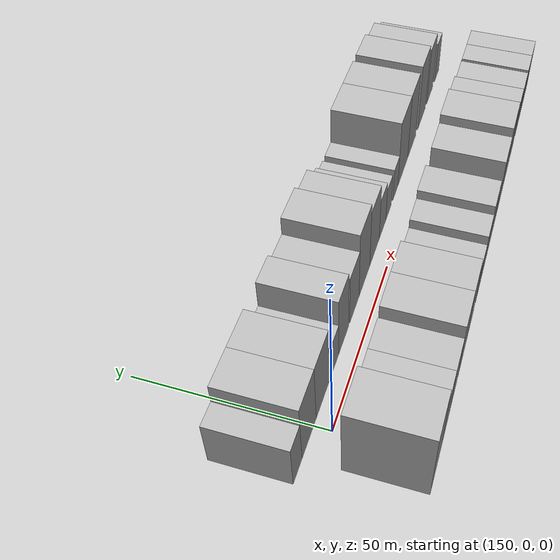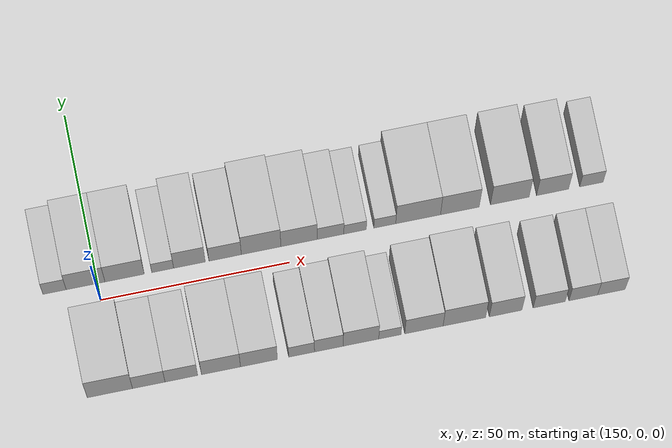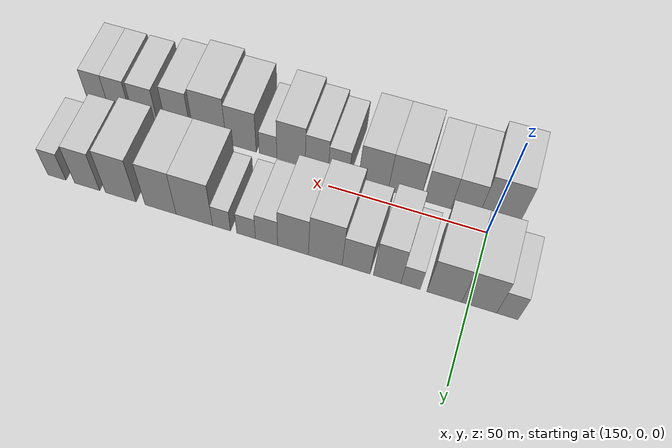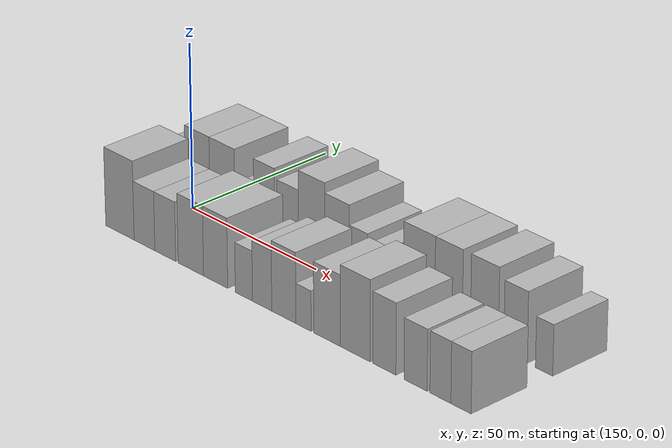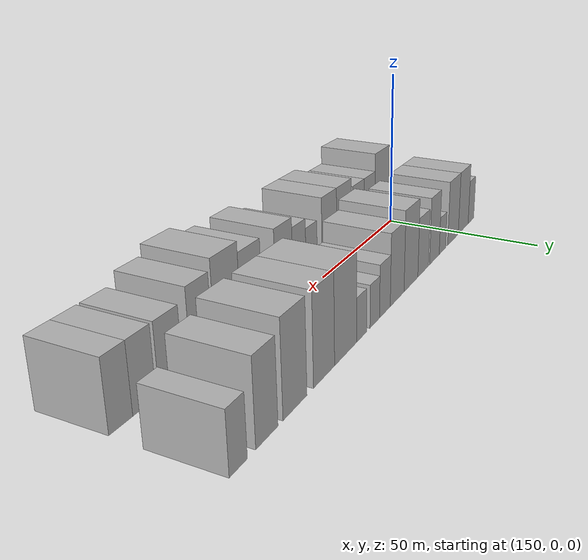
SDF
<sdf version="1.6">
 <world name="default">
  <model name="building_15">
   <static>1</static>
   <pose>138.5844 14.5000 0 0.000000 0.000000 1.570796</pose>
   <link name="link">
    <pose>0 0 7.50 0 0 0</pose>
    <collision name="collision"><geometry><box><size>20.0000 6.1723 15.0000</size></box></geometry></collision>
    <visual name="visual">
     <cast_shadows>0</cast_shadows>
     <geometry><box><size>20.0000 6.1723 15.0000</size></box></geometry>
     <material>
      <script>
       <uri>model://HANNAS_wall/materials/scripts</uri>
       <uri>model://HANNAS_wall/materials/textures</uri>
       <name>vrc/HANNAS_wall</name>
      </script>
     </material>
    </visual>
   </link>
  </model>
  <model name="building_16">
   <static>1</static>
   <pose>146.8104 14.5000 0 0.000000 0.000000 1.570796</pose>
   <link name="link">
    <pose>0 0 10.50 0 0 0</pose>
    <collision name="collision"><geometry><box><size>20.0000 10.2797 21.0000</size></box></geometry></collision>
    <visual name="visual">
     <cast_shadows>0</cast_shadows>
     <geometry><box><size>20.0000 10.2797 21.0000</size></box></geometry>
     <material>
      <script>
       <uri>model://HANNAS_wall/materials/scripts</uri>
       <uri>model://HANNAS_wall/materials/textures</uri>
       <name>vrc/HANNAS_wall</name>
      </script>
     </material>
    </visual>
   </link>
  </model>
  <model name="building_17">
   <static>1</static>
   <pose>157.1596 14.5000 0 0.000000 0.000000 1.570796</pose>
   <link name="link">
    <pose>0 0 10.50 0 0 0</pose>
    <collision name="collision"><geometry><box><size>20.0000 10.4187 21.0000</size></box></geometry></collision>
    <visual name="visual">
     <cast_shadows>0</cast_shadows>
     <geometry><box><size>20.0000 10.4187 21.0000</size></box></geometry>
     <material>
      <script>
       <uri>model://HANNAS_wall/materials/scripts</uri>
       <uri>model://HANNAS_wall/materials/textures</uri>
       <name>vrc/HANNAS_wall</name>
      </script>
     </material>
    </visual>
   </link>
  </model>
  <model name="building_18">
   <static>1</static>
   <pose>167.2716 14.5000 0 0.000000 0.000000 1.570796</pose>
   <link name="link">
    <pose>0 0 6.00 0 0 0</pose>
    <collision name="collision"><geometry><box><size>20.0000 5.8053 12.0000</size></box></geometry></collision>
    <visual name="visual">
     <cast_shadows>0</cast_shadows>
     <geometry><box><size>20.0000 5.8053 12.0000</size></box></geometry>
     <material>
      <script>
       <uri>model://HANNAS_wall/materials/scripts</uri>
       <uri>model://HANNAS_wall/materials/textures</uri>
       <name>vrc/HANNAS_wall</name>
      </script>
     </material>
    </visual>
   </link>
  </model>
  <model name="building_19">
   <static>1</static>
   <pose>174.3769 14.5000 0 0.000000 0.000000 1.570796</pose>
   <link name="link">
    <pose>0 0 10.50 0 0 0</pose>
    <collision name="collision"><geometry><box><size>20.0000 8.4054 21.0000</size></box></geometry></collision>
    <visual name="visual">
     <cast_shadows>0</cast_shadows>
     <geometry><box><size>20.0000 8.4054 21.0000</size></box></geometry>
     <material>
      <script>
       <uri>model://HANNAS_wall/materials/scripts</uri>
       <uri>model://HANNAS_wall/materials/textures</uri>
       <name>vrc/HANNAS_wall</name>
      </script>
     </material>
    </visual>
   </link>
  </model>
  <model name="building_20">
   <static>1</static>
   <pose>183.8857 14.5000 0 0.000000 0.000000 1.570796</pose>
   <link name="link">
    <pose>0 0 9.00 0 0 0</pose>
    <collision name="collision"><geometry><box><size>20.0000 8.6121 18.0000</size></box></geometry></collision>
    <visual name="visual">
     <cast_shadows>0</cast_shadows>
     <geometry><box><size>20.0000 8.6121 18.0000</size></box></geometry>
     <material>
      <script>
       <uri>model://HANNAS_wall/materials/scripts</uri>
       <uri>model://HANNAS_wall/materials/textures</uri>
       <name>vrc/HANNAS_wall</name>
      </script>
     </material>
    </visual>
   </link>
  </model>
  <model name="building_21">
   <static>1</static>
   <pose>193.4451 14.5000 0 0.000000 0.000000 1.570796</pose>
   <link name="link">
    <pose>0 0 12.00 0 0 0</pose>
    <collision name="collision"><geometry><box><size>20.0000 10.5067 24.0000</size></box></geometry></collision>
    <visual name="visual">
     <cast_shadows>0</cast_shadows>
     <geometry><box><size>20.0000 10.5067 24.0000</size></box></geometry>
     <material>
      <script>
       <uri>model://HANNAS_wall/materials/scripts</uri>
       <uri>model://HANNAS_wall/materials/textures</uri>
       <name>vrc/HANNAS_wall</name>
      </script>
     </material>
    </visual>
   </link>
  </model>
  <model name="building_22">
   <static>1</static>
   <pose>203.5447 14.5000 0 0.000000 0.000000 1.570796</pose>
   <link name="link">
    <pose>0 0 10.50 0 0 0</pose>
    <collision name="collision"><geometry><box><size>20.0000 9.6924 21.0000</size></box></geometry></collision>
    <visual name="visual">
     <cast_shadows>0</cast_shadows>
     <geometry><box><size>20.0000 9.6924 21.0000</size></box></geometry>
     <material>
      <script>
       <uri>model://HANNAS_wall/materials/scripts</uri>
       <uri>model://HANNAS_wall/materials/textures</uri>
       <name>vrc/HANNAS_wall</name>
      </script>
     </material>
    </visual>
   </link>
  </model>
  <model name="building_23">
   <static>1</static>
   <pose>211.9267 14.5000 0 0.000000 0.000000 1.570796</pose>
   <link name="link">
    <pose>0 0 7.50 0 0 0</pose>
    <collision name="collision"><geometry><box><size>20.0000 7.0716 15.0000</size></box></geometry></collision>
    <visual name="visual">
     <cast_shadows>0</cast_shadows>
     <geometry><box><size>20.0000 7.0716 15.0000</size></box></geometry>
     <material>
      <script>
       <uri>model://HANNAS_wall/materials/scripts</uri>
       <uri>model://HANNAS_wall/materials/textures</uri>
       <name>vrc/HANNAS_wall</name>
      </script>
     </material>
    </visual>
   </link>
  </model>
  <model name="building_24">
   <static>1</static>
   <pose>218.4605 14.5000 0 0.000000 0.000000 1.570796</pose>
   <link name="link">
    <pose>0 0 6.00 0 0 0</pose>
    <collision name="collision"><geometry><box><size>20.0000 5.9958 12.0000</size></box></geometry></collision>
    <visual name="visual">
     <cast_shadows>0</cast_shadows>
     <geometry><box><size>20.0000 5.9958 12.0000</size></box></geometry>
     <material>
      <script>
       <uri>model://HANNAS_wall/materials/scripts</uri>
       <uri>model://HANNAS_wall/materials/textures</uri>
       <name>vrc/HANNAS_wall</name>
      </script>
     </material>
    </visual>
   </link>
  </model>
  <model name="building_25">
   <static>1</static>
   <pose>226.3799 14.5000 0 0.000000 0.000000 1.570796</pose>
   <link name="link">
    <pose>0 0 6.00 0 0 0</pose>
    <collision name="collision"><geometry><box><size>20.0000 5.8430 12.0000</size></box></geometry></collision>
    <visual name="visual">
     <cast_shadows>0</cast_shadows>
     <geometry><box><size>20.0000 5.8430 12.0000</size></box></geometry>
     <material>
      <script>
       <uri>model://HANNAS_wall/materials/scripts</uri>
       <uri>model://HANNAS_wall/materials/textures</uri>
       <name>vrc/HANNAS_wall</name>
      </script>
     </material>
    </visual>
   </link>
  </model>
  <model name="building_26">
   <static>1</static>
   <pose>235.2744 14.5000 0 0.000000 0.000000 1.570796</pose>
   <link name="link">
    <pose>0 0 12.00 0 0 0</pose>
    <collision name="collision"><geometry><box><size>20.0000 11.9460 24.0000</size></box></geometry></collision>
    <visual name="visual">
     <cast_shadows>0</cast_shadows>
     <geometry><box><size>20.0000 11.9460 24.0000</size></box></geometry>
     <material>
      <script>
       <uri>model://HANNAS_wall/materials/scripts</uri>
       <uri>model://HANNAS_wall/materials/textures</uri>
       <name>vrc/HANNAS_wall</name>
      </script>
     </material>
    </visual>
   </link>
  </model>
  <model name="building_27">
   <static>1</static>
   <pose>246.4084 14.5000 0 0.000000 0.000000 1.570796</pose>
   <link name="link">
    <pose>0 0 12.00 0 0 0</pose>
    <collision name="collision"><geometry><box><size>20.0000 10.3221 24.0000</size></box></geometry></collision>
    <visual name="visual">
     <cast_shadows>0</cast_shadows>
     <geometry><box><size>20.0000 10.3221 24.0000</size></box></geometry>
     <material>
      <script>
       <uri>model://HANNAS_wall/materials/scripts</uri>
       <uri>model://HANNAS_wall/materials/textures</uri>
       <name>vrc/HANNAS_wall</name>
      </script>
     </material>
    </visual>
   </link>
  </model>
  <model name="building_28">
   <static>1</static>
   <pose>259.7302 14.5000 0 0.000000 0.000000 1.570796</pose>
   <link name="link">
    <pose>0 0 12.00 0 0 0</pose>
    <collision name="collision"><geometry><box><size>20.0000 10.3215 24.0000</size></box></geometry></collision>
    <visual name="visual">
     <cast_shadows>0</cast_shadows>
     <geometry><box><size>20.0000 10.3215 24.0000</size></box></geometry>
     <material>
      <script>
       <uri>model://HANNAS_wall/materials/scripts</uri>
       <uri>model://HANNAS_wall/materials/textures</uri>
       <name>vrc/HANNAS_wall</name>
      </script>
     </material>
    </visual>
   </link>
  </model>
  <model name="building_29">
   <static>1</static>
   <pose>271.1637 14.5000 0 0.000000 0.000000 1.570796</pose>
   <link name="link">
    <pose>0 0 10.50 0 0 0</pose>
    <collision name="collision"><geometry><box><size>20.0000 8.5455 21.0000</size></box></geometry></collision>
    <visual name="visual">
     <cast_shadows>0</cast_shadows>
     <geometry><box><size>20.0000 8.5455 21.0000</size></box></geometry>
     <material>
      <script>
       <uri>model://HANNAS_wall/materials/scripts</uri>
       <uri>model://HANNAS_wall/materials/textures</uri>
       <name>vrc/HANNAS_wall</name>
      </script>
     </material>
    </visual>
   </link>
  </model>
  <model name="building_30">
   <static>1</static>
   <pose>281.5586 14.5000 0 0.000000 0.000000 1.570796</pose>
   <link name="link">
    <pose>0 0 7.50 0 0 0</pose>
    <collision name="collision"><geometry><box><size>20.0000 6.2443 15.0000</size></box></geometry></collision>
    <visual name="visual">
     <cast_shadows>0</cast_shadows>
     <geometry><box><size>20.0000 6.2443 15.0000</size></box></geometry>
     <material>
      <script>
       <uri>model://HANNAS_wall/materials/scripts</uri>
       <uri>model://HANNAS_wall/materials/textures</uri>
       <name>vrc/HANNAS_wall</name>
      </script>
     </material>
    </visual>
   </link>
  </model>
  <model name="building_45">
   <static>1</static>
   <pose>147.6166 -14.5000 0 0.000000 0.000000 1.570796</pose>
   <link name="link">
    <pose>0 0 12.00 0 0 0</pose>
    <collision name="collision"><geometry><box><size>20.0000 11.9546 24.0000</size></box></geometry></collision>
    <visual name="visual">
     <cast_shadows>0</cast_shadows>
     <geometry><box><size>20.0000 11.9546 24.0000</size></box></geometry>
     <material>
      <script>
       <uri>model://HANNAS_wall/materials/scripts</uri>
       <uri>model://HANNAS_wall/materials/textures</uri>
       <name>vrc/HANNAS_wall</name>
      </script>
     </material>
    </visual>
   </link>
  </model>
  <model name="building_46">
   <static>1</static>
   <pose>157.8919 -14.5000 0 0.000000 0.000000 1.570796</pose>
   <link name="link">
    <pose>0 0 9.00 0 0 0</pose>
    <collision name="collision"><geometry><box><size>20.0000 8.5961 18.0000</size></box></geometry></collision>
    <visual name="visual">
     <cast_shadows>0</cast_shadows>
     <geometry><box><size>20.0000 8.5961 18.0000</size></box></geometry>
     <material>
      <script>
       <uri>model://HANNAS_wall/materials/scripts</uri>
       <uri>model://HANNAS_wall/materials/textures</uri>
       <name>vrc/HANNAS_wall</name>
      </script>
     </material>
    </visual>
   </link>
  </model>
  <model name="building_47">
   <static>1</static>
   <pose>166.5042 -14.5000 0 0.000000 0.000000 1.570796</pose>
   <link name="link">
    <pose>0 0 9.00 0 0 0</pose>
    <collision name="collision"><geometry><box><size>20.0000 8.6283 18.0000</size></box></geometry></collision>
    <visual name="visual">
     <cast_shadows>0</cast_shadows>
     <geometry><box><size>20.0000 8.6283 18.0000</size></box></geometry>
     <material>
      <script>
       <uri>model://HANNAS_wall/materials/scripts</uri>
       <uri>model://HANNAS_wall/materials/textures</uri>
       <name>vrc/HANNAS_wall</name>
      </script>
     </material>
    </visual>
   </link>
  </model>
  <model name="building_48">
   <static>1</static>
   <pose>176.9864 -14.5000 0 0.000000 0.000000 1.570796</pose>
   <link name="link">
    <pose>0 0 10.50 0 0 0</pose>
    <collision name="collision"><geometry><box><size>20.0000 10.3362 21.0000</size></box></geometry></collision>
    <visual name="visual">
     <cast_shadows>0</cast_shadows>
     <geometry><box><size>20.0000 10.3362 21.0000</size></box></geometry>
     <material>
      <script>
       <uri>model://HANNAS_wall/materials/scripts</uri>
       <uri>model://HANNAS_wall/materials/textures</uri>
       <name>vrc/HANNAS_wall</name>
      </script>
     </material>
    </visual>
   </link>
  </model>
  <model name="building_49">
   <static>1</static>
   <pose>187.0354 -14.5000 0 0.000000 0.000000 1.570796</pose>
   <link name="link">
    <pose>0 0 10.50 0 0 0</pose>
    <collision name="collision"><geometry><box><size>20.0000 9.7618 21.0000</size></box></geometry></collision>
    <visual name="visual">
     <cast_shadows>0</cast_shadows>
     <geometry><box><size>20.0000 9.7618 21.0000</size></box></geometry>
     <material>
      <script>
       <uri>model://HANNAS_wall/materials/scripts</uri>
       <uri>model://HANNAS_wall/materials/textures</uri>
       <name>vrc/HANNAS_wall</name>
      </script>
     </material>
    </visual>
   </link>
  </model>
  <model name="building_50">
   <static>1</static>
   <pose>198.3349 -14.5000 0 0.000000 0.000000 1.570796</pose>
   <link name="link">
    <pose>0 0 7.50 0 0 0</pose>
    <collision name="collision"><geometry><box><size>20.0000 6.8371 15.0000</size></box></geometry></collision>
    <visual name="visual">
     <cast_shadows>0</cast_shadows>
     <geometry><box><size>20.0000 6.8371 15.0000</size></box></geometry>
     <material>
      <script>
       <uri>model://HANNAS_wall/materials/scripts</uri>
       <uri>model://HANNAS_wall/materials/textures</uri>
       <name>vrc/HANNAS_wall</name>
      </script>
     </material>
    </visual>
   </link>
  </model>
  <model name="building_51">
   <static>1</static>
   <pose>205.5604 -14.5000 0 0.000000 0.000000 1.570796</pose>
   <link name="link">
    <pose>0 0 9.00 0 0 0</pose>
    <collision name="collision"><geometry><box><size>20.0000 7.6139 18.0000</size></box></geometry></collision>
    <visual name="visual">
     <cast_shadows>0</cast_shadows>
     <geometry><box><size>20.0000 7.6139 18.0000</size></box></geometry>
     <material>
      <script>
       <uri>model://HANNAS_wall/materials/scripts</uri>
       <uri>model://HANNAS_wall/materials/textures</uri>
       <name>vrc/HANNAS_wall</name>
      </script>
     </material>
    </visual>
   </link>
  </model>
  <model name="building_52">
   <static>1</static>
   <pose>214.0812 -14.5000 0 0.000000 0.000000 1.570796</pose>
   <link name="link">
    <pose>0 0 10.50 0 0 0</pose>
    <collision name="collision"><geometry><box><size>20.0000 9.4277 21.0000</size></box></geometry></collision>
    <visual name="visual">
     <cast_shadows>0</cast_shadows>
     <geometry><box><size>20.0000 9.4277 21.0000</size></box></geometry>
     <material>
      <script>
       <uri>model://HANNAS_wall/materials/scripts</uri>
       <uri>model://HANNAS_wall/materials/textures</uri>
       <name>vrc/HANNAS_wall</name>
      </script>
     </material>
    </visual>
   </link>
  </model>
  <model name="building_53">
   <static>1</static>
   <pose>221.7443 -14.5000 0 0.000000 0.000000 1.570796</pose>
   <link name="link">
    <pose>0 0 6.00 0 0 0</pose>
    <collision name="collision"><geometry><box><size>20.0000 5.8983 12.0000</size></box></geometry></collision>
    <visual name="visual">
     <cast_shadows>0</cast_shadows>
     <geometry><box><size>20.0000 5.8983 12.0000</size></box></geometry>
     <material>
      <script>
       <uri>model://HANNAS_wall/materials/scripts</uri>
       <uri>model://HANNAS_wall/materials/textures</uri>
       <name>vrc/HANNAS_wall</name>
      </script>
     </material>
    </visual>
   </link>
  </model>
  <model name="building_54">
   <static>1</static>
   <pose>230.7844 -14.5000 0 0.000000 0.000000 1.570796</pose>
   <link name="link">
    <pose>0 0 10.50 0 0 0</pose>
    <collision name="collision"><geometry><box><size>20.0000 10.1820 21.0000</size></box></geometry></collision>
    <visual name="visual">
     <cast_shadows>0</cast_shadows>
     <geometry><box><size>20.0000 10.1820 21.0000</size></box></geometry>
     <material>
      <script>
       <uri>model://HANNAS_wall/materials/scripts</uri>
       <uri>model://HANNAS_wall/materials/textures</uri>
       <name>vrc/HANNAS_wall</name>
      </script>
     </material>
    </visual>
   </link>
  </model>
  <model name="building_55">
   <static>1</static>
   <pose>241.5117 -14.5000 0 0.000000 0.000000 1.570796</pose>
   <link name="link">
    <pose>0 0 12.00 0 0 0</pose>
    <collision name="collision"><geometry><box><size>20.0000 11.2726 24.0000</size></box></geometry></collision>
    <visual name="visual">
     <cast_shadows>0</cast_shadows>
     <geometry><box><size>20.0000 11.2726 24.0000</size></box></geometry>
     <material>
      <script>
       <uri>model://HANNAS_wall/materials/scripts</uri>
       <uri>model://HANNAS_wall/materials/textures</uri>
       <name>vrc/HANNAS_wall</name>
      </script>
     </material>
    </visual>
   </link>
  </model>
  <model name="building_56">
   <static>1</static>
   <pose>252.4798 -14.5000 0 0.000000 0.000000 1.570796</pose>
   <link name="link">
    <pose>0 0 10.50 0 0 0</pose>
    <collision name="collision"><geometry><box><size>20.0000 8.6636 21.0000</size></box></geometry></collision>
    <visual name="visual">
     <cast_shadows>0</cast_shadows>
     <geometry><box><size>20.0000 8.6636 21.0000</size></box></geometry>
     <material>
      <script>
       <uri>model://HANNAS_wall/materials/scripts</uri>
       <uri>model://HANNAS_wall/materials/textures</uri>
       <name>vrc/HANNAS_wall</name>
      </script>
     </material>
    </visual>
   </link>
  </model>
  <model name="building_57">
   <static>1</static>
   <pose>264.0759 -14.5000 0 0.000000 0.000000 1.570796</pose>
   <link name="link">
    <pose>0 0 9.00 0 0 0</pose>
    <collision name="collision"><geometry><box><size>20.0000 8.5286 18.0000</size></box></geometry></collision>
    <visual name="visual">
     <cast_shadows>0</cast_shadows>
     <geometry><box><size>20.0000 8.5286 18.0000</size></box></geometry>
     <material>
      <script>
       <uri>model://HANNAS_wall/materials/scripts</uri>
       <uri>model://HANNAS_wall/materials/textures</uri>
       <name>vrc/HANNAS_wall</name>
      </script>
     </material>
    </visual>
   </link>
  </model>
  <model name="building_58">
   <static>1</static>
   <pose>273.1595 -14.5000 0 0.000000 0.000000 1.570796</pose>
   <link name="link">
    <pose>0 0 9.00 0 0 0</pose>
    <collision name="collision"><geometry><box><size>20.0000 7.6387 18.0000</size></box></geometry></collision>
    <visual name="visual">
     <cast_shadows>0</cast_shadows>
     <geometry><box><size>20.0000 7.6387 18.0000</size></box></geometry>
     <material>
      <script>
       <uri>model://HANNAS_wall/materials/scripts</uri>
       <uri>model://HANNAS_wall/materials/textures</uri>
       <name>vrc/HANNAS_wall</name>
      </script>
     </material>
    </visual>
   </link>
  </model>
  <model name="building_59">
   <static>1</static>
   <pose>280.6332 -14.5000 0 0.000000 0.000000 1.570796</pose>
   <link name="link">
    <pose>0 0 9.00 0 0 0</pose>
    <collision name="collision"><geometry><box><size>20.0000 7.3086 18.0000</size></box></geometry></collision>
    <visual name="visual">
     <cast_shadows>0</cast_shadows>
     <geometry><box><size>20.0000 7.3086 18.0000</size></box></geometry>
     <material>
      <script>
       <uri>model://HANNAS_wall/materials/scripts</uri>
       <uri>model://HANNAS_wall/materials/textures</uri>
       <name>vrc/HANNAS_wall</name>
      </script>
     </material>
    </visual>
   </link>
  </model>
 </world>
</sdf>
